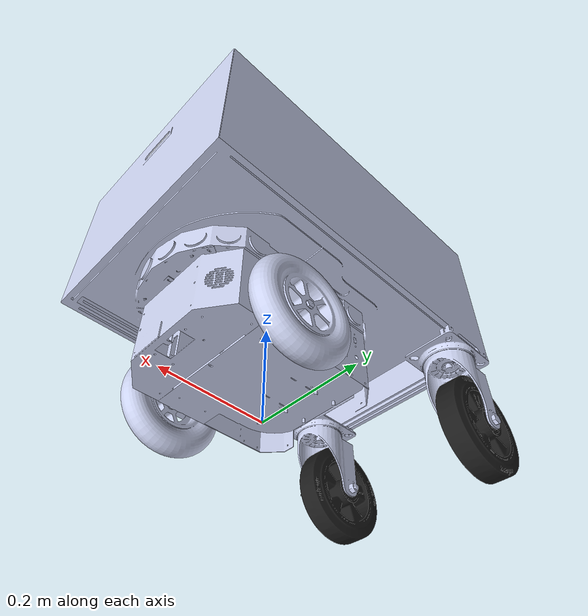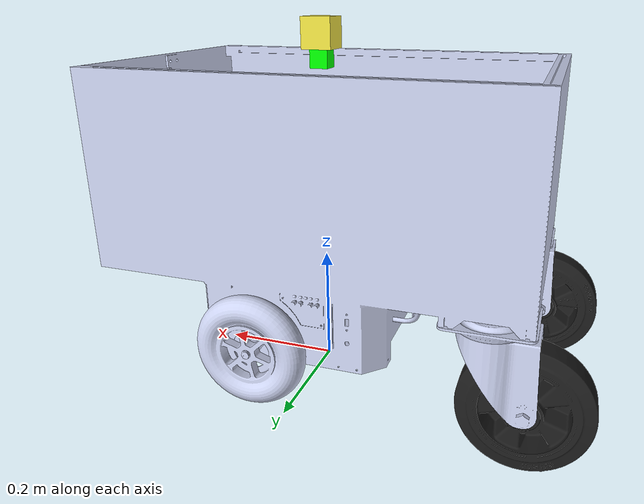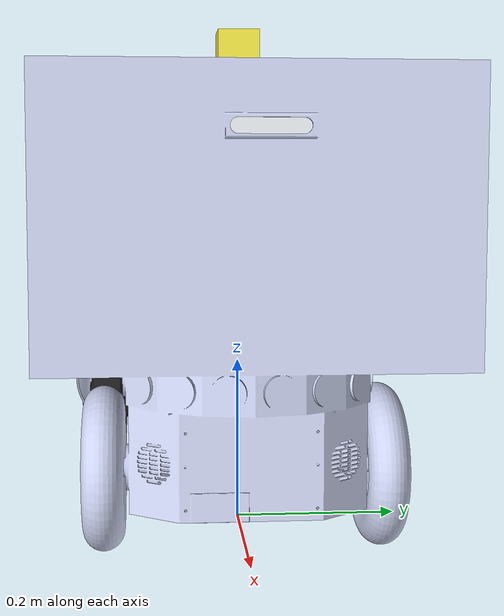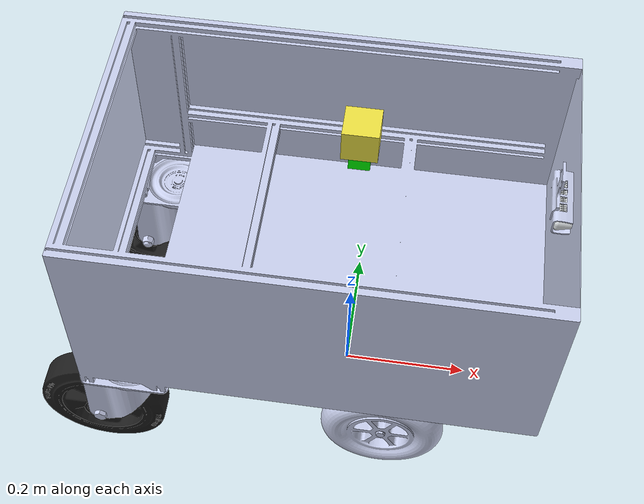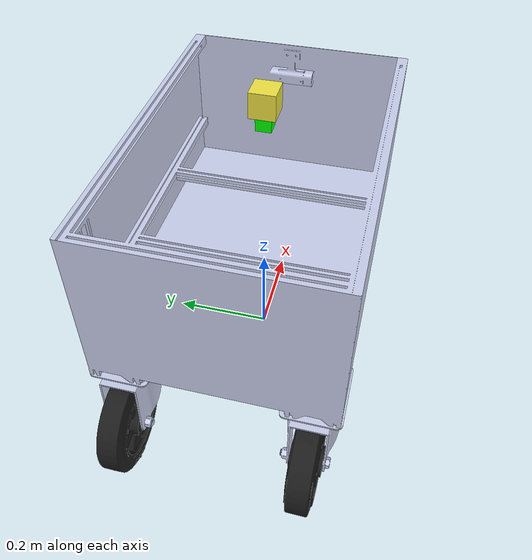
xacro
<?xml version="1.0"?>
<robot name="robbie" xmlns:xacro="http://www.ros.org/wiki/xacro">
    <gazebo>
        <plugin name="diff_drive_controller" filename="libgazebo_ros_diff_drive.so">
            <!-- Update rate in Hz -->
            <update_rate>50</update_rate>
            <!-- wheels -->
            <left_joint>left_front_wheel_joint</left_joint>
            <right_joint>right_front_wheel_joint</right_joint>
            <!-- kinematics -->
            <wheel_separation>0.33282</wheel_separation>
            <wheel_diameter>0.19</wheel_diameter>
            <!-- output -->
            <publish_odom>true</publish_odom>
            <publish_odom_tf>true</publish_odom_tf>
            <publish_wheel_tf>true</publish_wheel_tf>
            <odometry_topic>/odom</odometry_topic>
            <odometry_frame>odom</odometry_frame>
            <robot_base_frame>base_footprint</robot_base_frame>
        </plugin>
    </gazebo>

      <gazebo>
        <plugin name="gazebo_ros_joint_state_publisher"
            filename="libgazebo_ros_joint_state_publisher.so">
          <update_rate>100</update_rate>
          <joint_name>castor_left_joint</joint_name>
          <joint_name>castor_right_joint</joint_name>
          <joint_name>left_rear_wheel_joint</joint_name>
          <joint_name>right_rear_wheel_joint</joint_name>
        </plugin>
      </gazebo>

    <gazebo reference="camera_link">
      <material>Gazebo/Red</material>
      <sensor name="camera_sensor" type="camera">
        <pose>0 0 0 0 0 0</pose>
        <visualize>true</visualize>
        <update_rate>10.0</update_rate>
        <plugin name="camera_controller" filename="libgazebo_ros_camera.so">
          <frame_name>custom_frame</frame_name>
        </plugin>
      </sensor>
    </gazebo>

    <gazebo reference="lidar_link">
      <sensor name="lidar" type="ray">
        <pose>0.215 0 0.215 0 0 0</pose>
        <always_on>true</always_on>
        <visualize>true</visualize>
        <update_rate>5</update_rate>
        <ray>
          <scan>
            <horizontal>
              <samples>360</samples>
              <resolution>1.00000</resolution>
              <min_angle>0.000000</min_angle>
              <max_angle>6.280000</max_angle>
            </horizontal>
          </scan>
          <range>
            <min>0.120000</min>
            <max>3.5</max>
            <resolution>0.015000</resolution>
          </range>
          <noise>
            <type>gaussian</type>
            <mean>0.0</mean>
            <stddev>0.01</stddev>
          </noise>
        </ray>
        <plugin name="scan" filename="libgazebo_ros_ray_sensor.so">
          <ros>
            <remapping>~/out:=scan</remapping>
          </ros>
          <output_type>sensor_msgs/LaserScan</output_type>
          <frame_name>lidar_link</frame_name>
        </plugin>
      </sensor>
    </gazebo>

  <link name="base_footprint" />

  <joint name="base_footprint_joint" type="fixed">
    <parent link="base_footprint" />
    <child link="base_link" />
    <origin xyz="0 0 0.25"/>
  </joint>

  <link name="base_link">
    <inertial>
      <origin xyz="-0.0275477195536098 0.0128172029487573 0.0262658587986981" rpy="0 0 0"/>
      <mass value="4.38393615968554"/>
      <inertia ixx="0.0355967144794858" ixy="1.44954092265228E-05" ixz="-5.94242658306167E-05"
               iyy="0.0709794850323618" iyz="1.64084765197745E-05" izz="0.0922802904915334"/>
    </inertial>
    <visual>
      <origin xyz="0 0 0" rpy="0 0 0"/>
      <geometry>
        <mesh filename="file:///home/sk/robbie_ws/install/robbie_description/share/robbie_description/meshes/base_link.STL"/>
      </geometry>
      <material name="">
        <color rgba="0.792156862745098 0.819607843137255 0.933333333333333 1"/>
      </material>
    </visual>
    <collision>
      <origin xyz="0 0 0" rpy="0 0 0"/>
      <geometry>
        <mesh filename="file:///home/sk/robbie_ws/install/robbie_description/share/robbie_description/meshes/base_link.STL"/>
      </geometry>
    </collision>
  </link>

  <!-- Camera Link -->
  <link name="camera_link">
    <inertial>
      <origin xyz="-0.0114440210927269 -0.00170498094169685 -0.00013610820163712" rpy="0 0 0"/>
      <mass value="0.107910424499118"/>
      <inertia ixx="7.12550225936061E-05" ixy="-1.78478321351014E-08" ixz="4.92977551446927E-08"
               iyy="7.71002091398328E-06" iyz="2.4889731310988E-10" izz="7.02567329544767E-05"/>
    </inertial>
    <visual>
      <origin xyz="0 0 0" rpy="0 0 0"/>
      <geometry>
        <mesh filename="file:///home/sk/robbie_ws/install/robbie_description/share/robbie_description/meshes/camera_link.STL"/>
      </geometry>
      <material name="">
        <color rgba="0.898039215686275 0.917647058823529 0.929411764705882 1"/>
      </material>
    </visual>
    <collision>
      <origin xyz="0 0 0" rpy="0 0 0"/>
      <geometry>
        <mesh filename="file:///home/sk/robbie_ws/install/robbie_description/share/robbie_description/meshes/camera_link.STL"/>
      </geometry>
    </collision>
  </link>
  <joint name="camera_link_joint" type="fixed">
    <origin xyz="0.294999927995358 0.0120073063795502 0.224506329980205" rpy="0 0 0"/>
    <parent link="base_link"/>
    <child link="camera_link"/>
    <axis xyz="0 0 0"/>
  </joint>

  <link name="lidar_link">
    <inertial>
      <origin xyz="0 0 0" rpy="0 0 0"/>
      <mass value="0.1"/>
      <inertia ixx="0.1" ixy="0" ixz="0" iyy="0.1" iyz="0" izz="0.1"/>
    </inertial>
    <visual>
      <geometry>
        <box size="0.05 0.05 0.05"/>
      </geometry>
    </visual>
    <collision>
      <origin xyz="0 0 0" rpy="0 0 0"/>
      <geometry>
        <box size="0.05 0.05 0.05"/>
      </geometry>
    </collision>
  </link>

  <joint name="lidar_joint" type="fixed">
    <parent link="base_link"/>
    <child link="lidar_link"/>
    <origin xyz="0 0 0.33" rpy="0 0 0"/>
  </joint>

  <link name="imu_link">
    <inertial>
      <origin xyz="0 0 0" rpy="0 0 0"/>
      <mass value="0.1"/>
      <inertia ixx="0.1" ixy="0" ixz="0" iyy="0.1" iyz="0" izz="0.1"/>
    </inertial>
    <visual>
      <material name="imu_material">
        <color rgba="0 1 0 1"/> <!-- Green color -->
      </material>
      <geometry>
        <box size="0.03 0.03 0.03"/>
      </geometry>
    </visual>
    <collision>
      <origin xyz="0 0 0" rpy="0 0 0"/>
      <geometry>
        <box size="0.03 0.03 0.03"/>
      </geometry>
    </collision>
  </link>

  <joint name="imu_joint" type="fixed">
    <parent link="base_link"/>
    <child link="imu_link"/>
    <origin xyz="0 0 0.29" rpy="0 0 0"/>
  </joint>

  <link name="right_front_wheel">
  <inertial>
    <origin xyz="1.57177604265257E-11 3.84195536495824E-10 -0.0199196799092506" rpy="0 0 0"/>
    <mass value="0.947517622487007"/>
    <inertia ixx="0.00263529976313977" ixy="-3.6684870358251E-13" ixz="-1.92247362640682E-13"
             iyy="0.00263529975522272" iyz="-7.04968734349345E-14" izz="0.00501071454890536"/>
  </inertial>
  <visual>
    <origin xyz="0 0 0" rpy="0 0 0"/>
    <geometry>
      <mesh filename="file:///home/sk/robbie_ws/install/robbie_description/share/robbie_description/meshes/right_front_wheel.STL"/>
    </geometry>
    <material name="">
      <color rgba="0.792156862745098 0.819607843137255 0.933333333333333 1"/>
    </material>
  </visual>
  <collision>
    <origin xyz="0 0 0" rpy="0 0 0"/>
    <geometry>
      <mesh filename="file:///home/sk/robbie_ws/install/robbie_description/share/robbie_description/meshes/right_front_wheel.STL"/>
    </geometry>
  </collision>
</link>

<!-- Right Front Wheel Joint -->
  <joint name="right_front_wheel_joint" type="continuous">
    <origin xyz="0.0729119999999999 -0.184124599999999 -0.1665928" rpy="1.5707963267949 0 0"/>
    <parent link="base_link"/>
    <child link="right_front_wheel"/>
    <axis xyz="0 0 -1"/>
    <limit effort="10" velocity="10"/>
    <dynamics damping="0.1" friction="0.1"/>
</joint>

<link name="left_front_wheel">
  <inertial>
    <origin xyz="-1.26729737814912E-10 3.63032576222722E-10 0.0199196799092508" rpy="0 0 0"/>
    <mass value="0.947517622487009"/>
    <inertia ixx="0.00263529976226659" ixy="2.50702779698319E-12" ixz="-2.04437825464689E-13"
             iyy="0.00263529975609591" iyz="1.1565483697353E-14" izz="0.00501071454890537"/>
  </inertial>
  <visual>
    <origin xyz="0 0 0" rpy="0 0 0"/>
    <geometry>
      <mesh filename="file:///home/sk/robbie_ws/install/robbie_description/share/robbie_description/meshes/left_front_wheel.STL"/>
    </geometry>
    <material name="">
      <color rgba="0.792156862745098 0.819607843137255 0.933333333333333 1"/>
    </material>
  </visual>
  <collision>
    <origin xyz="0 0 0" rpy="0 0 0"/>
    <geometry>
      <mesh filename="file:///home/sk/robbie_ws/install/robbie_description/share/robbie_description/meshes/left_front_wheel.STL"/>
    </geometry>
  </collision>
</link>

<!-- Left Front Wheel Joint -->
<joint name="left_front_wheel_joint" type="continuous">
  <origin xyz="0.0729119999999998 0.1841246 -0.1665928" rpy="1.5707963267949 0 0"/>
  <parent link="base_link"/>
  <child link="left_front_wheel"/>
  <axis xyz="0 0 -1"/>
  <limit effort="10" velocity="10"/>
  <dynamics damping="0.1" friction="0.1"/>
</joint>

<!-- Castor Left Link -->
<link name="castor_left">
  <inertial>
    <origin xyz="-0.0160382579302657 -0.000360796045913742 -0.0408457213337043" rpy="0 0 0"/>
    <mass value="0.175409239873886"/>
    <inertia ixx="0.000376265562125672" ixy="-4.08537108129914E-08" ixz="-8.33769319343439E-05"
             iyy="0.000367456331591104" iyz="-4.92639449498858E-08" izz="0.000322141908444309"/>
  </inertial>
  <visual>
    <origin xyz="0 0 0" rpy="0 0 0"/>
    <geometry>
      <mesh filename="file:///home/sk/robbie_ws/install/robbie_description/share/robbie_description/meshes/castor_left.STL"/>
    </geometry>
    <material name="">
      <color rgba="0.792156862745098 0.819607843137255 0.933333333333333 1"/>
    </material>
  </visual>
  <collision>
    <origin xyz="0 0 0" rpy="0 0 0"/>
    <geometry>
      <mesh filename="file:///home/sk/robbie_ws/install/robbie_description/share/robbie_description/meshes/castor_left.STL"/>
    </geometry>
  </collision>
</link>

<!-- Castor Left Joint -->
<joint name="castor_left_joint" type="continuous">
  <origin xyz="-0.316000000000002 0.174000000000001 -0.0370000000000003" rpy="0 0 0"/>
  <parent link="base_link"/>
  <child link="castor_left"/>
  <axis xyz="0 0 1"/>
  <limit effort="10" velocity="0"/>
</joint>

<!-- Left Rear Wheel Link -->
<link name="left_rear_wheel">
  <inertial>
    <origin xyz="-2.57859832317187E-06 -1.62106171311682E-05 0.0424961000652844" rpy="0 0 0"/>
    <mass value="0.977397500478249"/>
    <inertia ixx="0.00315278037453461" ixy="-2.63404495731575E-06" ixz="9.61305490740834E-08"
             iyy="0.00314548510245149" iyz="5.97872837064641E-08" izz="0.00595537788753282"/>
  </inertial>
  <visual>
    <origin xyz="0 0 0" rpy="0 0 0"/>
    <geometry>
      <mesh filename="file:///home/sk/robbie_ws/install/robbie_description/share/robbie_description/meshes/left_rear_wheel.STL"/>
    </geometry>
    <material name="">
      <color rgba="0.109803921568627 0.109803921568627 0.109803921568627 1"/>
    </material>
  </visual>
  <collision>
    <origin xyz="0 0 0" rpy="0 0 0"/>
    <geometry>
      <mesh filename="file:///home/sk/robbie_ws/install/robbie_description/share/robbie_description/meshes/left_rear_wheel.STL"/>
    </geometry>
  </collision>
</link>

<!-- Left Rear Wheel Joint -->
<joint name="left_rear_wheel_joint" type="continuous">
  <origin xyz="-0.056931674086251 0.0425 -0.131998461447417" rpy="1.5707963267949 0 0"/>
  <parent link="castor_left"/>
  <child link="left_rear_wheel"/>
  <axis xyz="0 0 -1"/>
  <limit effort="10" velocity="10"/>
  <dynamics damping="0.1" friction="0.1"/>
</joint>

<!-- Castor Right Link -->
<link name="castor_right">
  <inertial>
    <origin xyz="-0.0160382581338551 0.000348183540450797 -0.0408457213337035" rpy="0 0 0"/>
    <mass value="0.175409239873882"/>
    <inertia ixx="0.000376265562125663" ixy="-4.08537108126189E-08" ixz="-8.3376932879315E-05"
             iyy="0.00036745633159109" iyz="-4.92633709240725E-08" izz="0.0003221419084443"/>
  </inertial>
  <visual>
    <origin xyz="0 0 0" rpy="0 0 0"/>
    <geometry>
      <mesh filename="file:///home/sk/robbie_ws/install/robbie_description/share/robbie_description/meshes/castor_right.STL"/>
    </geometry>
    <material name="">
      <color rgba="0.792156862745098 0.819607843137255 0.933333333333333 1"/>
    </material>
  </visual>
  <collision>
    <origin xyz="0 0 0" rpy="0 0 0"/>
    <geometry>
      <mesh filename="file:///home/sk/robbie_ws/install/robbie_description/share/robbie_description/meshes/castor_right.STL"/>
    </geometry>
  </collision>
</link>

<!-- Castor Right Joint -->
<joint name="castor_right_joint" type="continuous">
  <origin xyz="-0.316 -0.174 -0.037" rpy="0 0 0"/>
  <parent link="base_link"/>
  <child link="castor_right"/>
  <axis xyz="0 0 1"/>
  <limit effort="10" velocity="0"/>
</joint>

<link name="right_rear_wheel">
  <inertial>
    <origin xyz="1.62101703494316E-05 -2.57893733188186E-06 -0.0425039001100165" rpy="0 0 0"/>
    <mass value="0.977397479624592"/>
    <inertia ixx="0.00314548508257928" ixy="2.63401551925689E-06" ixz="-5.97688105972883E-08"
             iyy="0.00315278027430538" iyz="9.61286255668183E-08" izz="0.00595537777954947"/>
  </inertial>
  <visual>
    <origin xyz="0 0 0" rpy="0 0 0"/>
    <geometry>
      <mesh filename="file:///home/sk/robbie_ws/install/robbie_description/share/robbie_description/meshes/right_rear_wheel.STL"/>
    </geometry>
    <material name="">
      <color rgba="0.109803921568627 0.109803921568627 0.109803921568627 1"/>
    </material>
  </visual>
  <collision>
    <origin xyz="0 0 0" rpy="0 0 0"/>
    <geometry>
      <mesh filename="file:///home/sk/robbie_ws/install/robbie_description/share/robbie_description/meshes/right_rear_wheel.STL"/>
    </geometry>
  </collision>
</link>

<!-- Right Rear Wheel Joint -->
<joint name="right_rear_wheel_joint" type="continuous">
  <origin xyz="-0.0569316740862509 -0.0425000000000001 -0.131998461447418" rpy="1.5707963267949 0 0"/>
  <parent link="castor_right"/>
  <child link="right_rear_wheel"/>
  <axis xyz="0 0 -1"/>
  <limit effort="10" velocity="10"/>
  <dynamics damping="0.1" friction="0.1"/>
</joint>
</robot>
